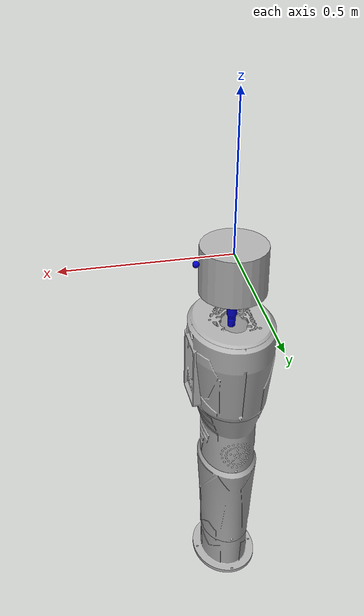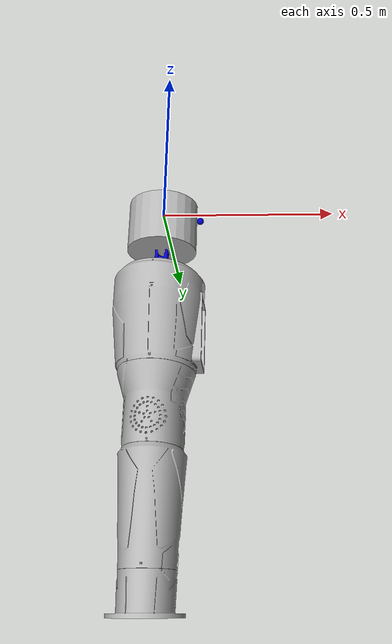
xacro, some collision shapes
<?xml version="1.0"?>
<robot xmlns:xacro="http://www.ros.org/wiki/xacro" name="tele_humanoid">

  <xacro:property name="pan_joint_z" value="-0.11" />
  <xacro:property name="tilt_joint_z" value="-0.01" />

  <xacro:macro name="box_inertia" params="m x y z">
    <inertial>
      <mass value="${m}"/>
      <inertia ixx="${m*(y*y+z*z)/12}" ixy="0" ixz="0" iyy="${m*(x*x+z*z)/12}" iyz="0" izz="${m*(x*x+y*y)/12}"/>
    </inertial>
  </xacro:macro>

  <xacro:macro name="cylinder_inertia" params="m r h">
    <inertial>
      <mass value="${m}"/>
      <inertia ixx="${m*(3*r*r+h*h)/12}" ixy="0" ixz="0" iyy="${m*(3*r*r+h*h)/12}" iyz="0" izz="${m*r*r/2}"/>
    </inertial>
  </xacro:macro>

  <xacro:macro name="sphere_inertia" params="m r">
    <inertial>
      <mass value="${m}"/>
      <inertia ixx="${(2/5)*m*r*r}" ixy="0" ixz="0" iyy="${(2/5)*m*r*r}" iyz="0" izz="${(2/5)*m*r*r}"/>
    </inertial>
  </xacro:macro>

  <link name="base_link"/>

  <joint name="base_to_tele_joint" type="fixed">
    <parent link="base_link"/>
    <child link="tele_torso_link"/>
    <origin xyz="0 0 0" rpy="0 0 0"/>
  </joint>

  <link name="tele_torso_link">
    <collision>
      <origin xyz="0 0 0.3" rpy="0 0 0"/>
      <geometry><box size="0.2 0.2 0.6"/></geometry>
    </collision>
    <xacro:box_inertia m="1.0" x="0.2" y="0.2" z="0.6"/>

    <visual>
      <origin xyz="0 0 0" rpy="0 0 1.57"/>
      <geometry><mesh filename="package://head_bringup/meshes/lower_bottom.stl" scale="0.001 0.001 0.001"/></geometry>
      <material name="tele_grey"><color rgba="0.7 0.7 0.7 1"/></material>
    </visual>
    <visual>
      <origin xyz="0 0 0" rpy="0 0 1.57"/>
      <geometry><mesh filename="package://head_bringup/meshes/upper_bottom.stl" scale="0.001 0.001 0.001"/></geometry>
      <material name="tele_grey"/>
    </visual>
    <visual>
      <origin xyz="0 0 0" rpy="0 0 1.57"/>
      <geometry><mesh filename="package://head_bringup/meshes/mid_section.stl" scale="0.001 0.001 0.001"/></geometry>
      <material name="tele_grey"/>
    </visual>
    <visual>
      <origin xyz="0 0 0" rpy="0 0 1.57"/>
      <geometry><mesh filename="package://head_bringup/meshes/chest.stl" scale="0.001 0.001 0.001"/></geometry>
      <material name="tele_grey"/>
    </visual>
  </link>

  <joint name="tele_pan_joint" type="revolute">
    <parent link="tele_torso_link"/>
    <child link="tele_neck_link"/>
    <origin xyz="0 0 ${pan_joint_z}" rpy="0 0 0"/>
    <axis xyz="0 0 1"/>
    <limit lower="-1.57" upper="1.57" effort="10" velocity="1.0"/>
  </joint>

  <link name="tele_neck_link">
    <visual>
      <origin xyz="-0.02 0 0" rpy="0 0 1.57"/>
      <geometry><mesh filename="package://head_bringup/meshes/head_body_joint.stl" scale="0.001 0.001 0.001"/></geometry>
      <material name="tele_blue"><color rgba="0 0 0.8 1"/></material>
    </visual>
    <collision>
       <origin xyz="0 0 0.025" rpy="0 0 0"/>
       <geometry><cylinder radius="0.05" length="0.05"/></geometry>
    </collision>
    <xacro:cylinder_inertia m="0.2" r="0.05" h="0.05"/>
  </link>

  <joint name="tele_tilt_joint" type="revolute">
    <parent link="tele_neck_link"/>
    <child link="tele_head_link"/>
    <origin xyz="0 0 ${tilt_joint_z}" rpy="0 0 0"/>
    <axis xyz="0 -1 0"/>
    <limit lower="-1.57" upper="1.57" effort="10" velocity="1.0"/>
  </joint>

  <link name="tele_head_link">
    <visual>
      <origin xyz="0 0 0" rpy="0 0 1.57"/>
      <geometry><mesh filename="package://head_bringup/meshes/head.stl" scale="0.001 0.001 0.001"/></geometry>
      <material name="tele_grey"/>
    </visual>
    <collision>
      <origin xyz="0 0 0.075" rpy="0 0 0"/>
      <geometry><cylinder radius="0.1" length="0.15"/></geometry>
    </collision>
    <xacro:cylinder_inertia m="1.0" r="0.1" h="0.15"/>
  </link>

  <joint name="tele_sensor_joint" type="fixed">
    <parent link="tele_head_link"/>
    <child link="tele_camera_link"/>
    <origin xyz="0.11 0 0.10" rpy="0 0 0"/>
  </joint>

  <link name="tele_camera_link">
    <visual>
      <geometry><sphere radius="0.01"/></geometry>
      <material name="tele_blue"/>
    </visual>
    <collision>
       <geometry><sphere radius="0.01"/></geometry>
    </collision>
    <xacro:sphere_inertia m="0.05" r="0.01"/>
  </link>

</robot>
